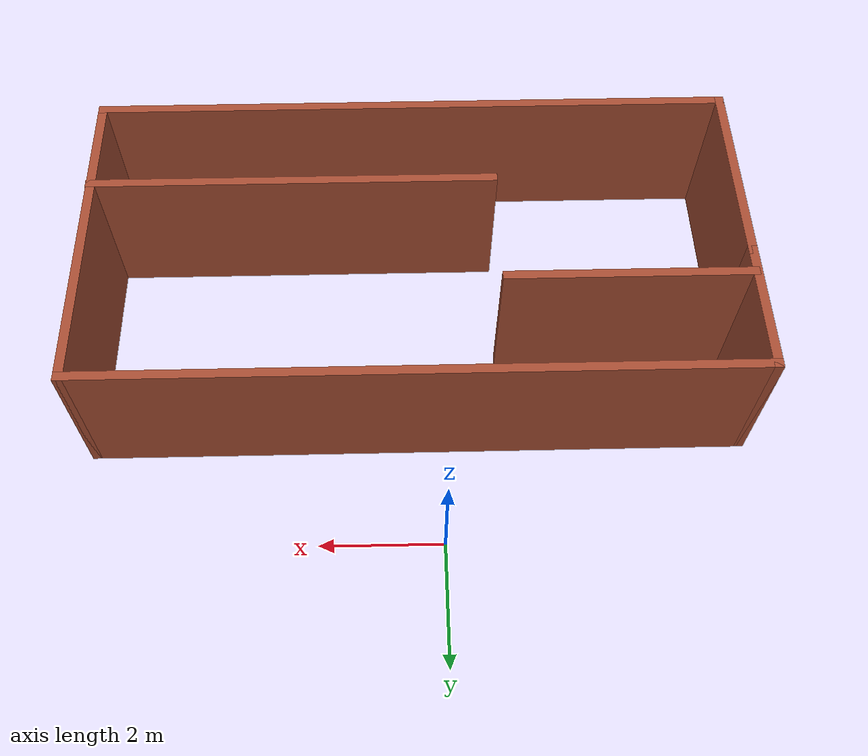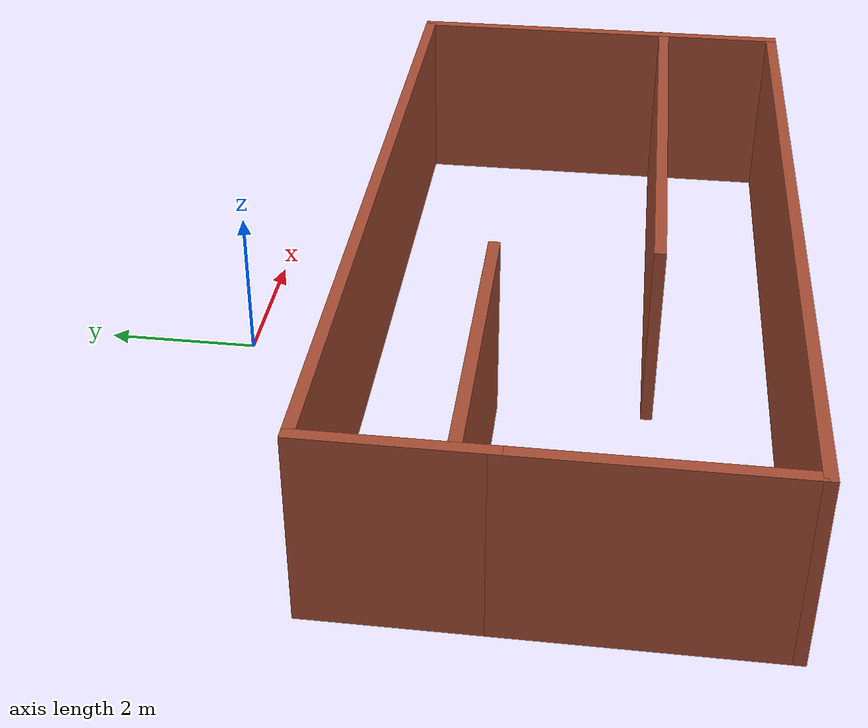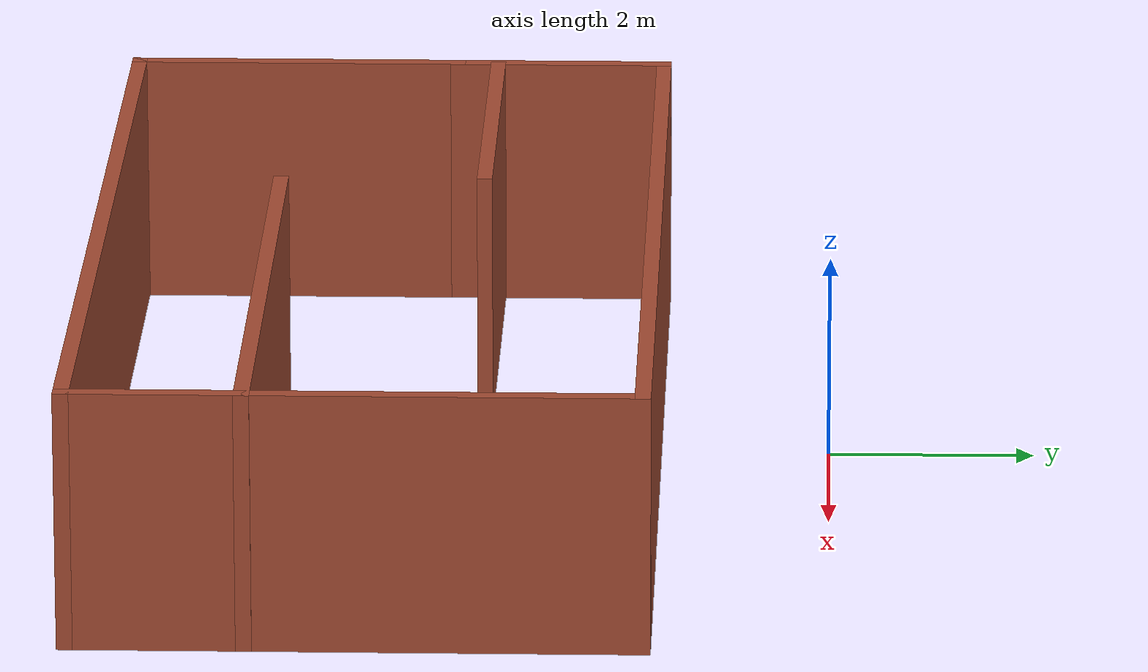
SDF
<?xml version='1.0'?>
<sdf version='1.7'>
  <model name='myword'>
    <pose>0.385 -3.5675 0 0 -0 0</pose>
    <link name='Wall_0'>
      <collision name='Wall_0_Collision'>
        <geometry>
          <box>
            <size>2.25 0.15 2.5</size>
          </box>
        </geometry>
        <pose>0 0 1.25 0 -0 0</pose>
      </collision>
      <visual name='Wall_0_Visual'>
        <pose>0 0 1.25 0 -0 0</pose>
        <geometry>
          <box>
            <size>2.25 0.15 2.5</size>
          </box>
        </geometry>
        <material>
          <script>
            <uri>file://media/materials/scripts/gazebo.material</uri>
            <name>Gazebo/Bricks</name>
          </script>
          <ambient>1 1 1 1</ambient>
        </material>
        <meta>
          <layer>0</layer>
        </meta>
      </visual>
      <pose>-5.305 0.8075 0 0 -0 1.5708</pose>
    </link>
    <link name='Wall_1'>
      <collision name='Wall_1_Collision'>
        <geometry>
          <box>
            <size>10.75 0.15 2.5</size>
          </box>
        </geometry>
        <pose>0 0 1.25 0 -0 0</pose>
      </collision>
      <visual name='Wall_1_Visual'>
        <pose>0 0 1.25 0 -0 0</pose>
        <geometry>
          <box>
            <size>10.75 0.15 2.5</size>
          </box>
        </geometry>
        <material>
          <script>
            <uri>file://media/materials/scripts/gazebo.material</uri>
            <name>Gazebo/Bricks</name>
          </script>
          <ambient>1 1 1 1</ambient>
        </material>
        <meta>
          <layer>0</layer>
        </meta>
      </visual>
      <pose>-0.005 1.8575 0 0 -0 0</pose>
    </link>
    <link name='Wall_2'>
      <collision name='Wall_2_Collision'>
        <geometry>
          <box>
            <size>5.5 0.15 2.5</size>
          </box>
        </geometry>
        <pose>0 0 1.25 0 -0 0</pose>
      </collision>
      <visual name='Wall_2_Visual'>
        <pose>0 0 1.25 0 -0 0</pose>
        <geometry>
          <box>
            <size>5.5 0.15 2.5</size>
          </box>
        </geometry>
        <material>
          <script>
            <uri>file://media/materials/scripts/gazebo.material</uri>
            <name>Gazebo/Bricks</name>
          </script>
          <ambient>1 1 1 1</ambient>
        </material>
        <meta>
          <layer>0</layer>
        </meta>
      </visual>
      <pose>5.295 -0.8175 0 0 -0 -1.5708</pose>
    </link>
    <link name='Wall_3'>
      <collision name='Wall_3_Collision'>
        <geometry>
          <box>
            <size>10.75 0.15 2.5</size>
          </box>
        </geometry>
        <pose>0 0 1.25 0 -0 0</pose>
      </collision>
      <visual name='Wall_3_Visual'>
        <pose>0 0 1.25 0 -0 0</pose>
        <geometry>
          <box>
            <size>10.75 0.15 2.5</size>
          </box>
        </geometry>
        <material>
          <script>
            <uri>file://media/materials/scripts/gazebo.material</uri>
            <name>Gazebo/Bricks</name>
          </script>
          <ambient>1 1 1 1</ambient>
        </material>
        <meta>
          <layer>0</layer>
        </meta>
      </visual>
      <pose>-0.005 -3.4925 0 0 -0 3.14159</pose>
    </link>
    <link name='Wall_4'>
      <collision name='Wall_4_Collision'>
        <geometry>
          <box>
            <size>3.4 0.15 2.5</size>
          </box>
        </geometry>
        <pose>0 0 1.25 0 -0 0</pose>
      </collision>
      <visual name='Wall_4_Visual'>
        <pose>0 0 1.25 0 -0 0</pose>
        <geometry>
          <box>
            <size>3.4 0.15 2.5</size>
          </box>
        </geometry>
        <material>
          <script>
            <uri>file://media/materials/scripts/gazebo.material</uri>
            <name>Gazebo/Bricks</name>
          </script>
          <ambient>1 1 1 1</ambient>
        </material>
        <meta>
          <layer>0</layer>
        </meta>
      </visual>
      <pose>-5.305 -1.8675 0 0 -0 1.5708</pose>
    </link>
    <link name='Wall_6'>
      <collision name='Wall_6_Collision'>
        <geometry>
          <box>
            <size>4 0.15 2.5</size>
          </box>
        </geometry>
        <pose>0 0 1.25 0 -0 0</pose>
      </collision>
      <visual name='Wall_6_Visual'>
        <pose>0 0 1.25 0 -0 0</pose>
        <geometry>
          <box>
            <size>4 0.15 2.5</size>
          </box>
        </geometry>
        <material>
          <script>
            <uri>file://media/materials/scripts/gazebo.material</uri>
            <name>Gazebo/Bricks</name>
          </script>
          <ambient>1 1 1 1</ambient>
        </material>
        <meta>
          <layer>0</layer>
        </meta>
      </visual>
      <pose>-3.34 0.1675 0 0 -0 0</pose>
    </link>
    <link name='Wall_8'>
      <collision name='Wall_8_Collision'>
        <geometry>
          <box>
            <size>6.75 0.15 2.5</size>
          </box>
        </geometry>
        <pose>0 0 1.25 0 -0 0</pose>
      </collision>
      <visual name='Wall_8_Visual'>
        <pose>0 0 1.25 0 -0 0</pose>
        <geometry>
          <box>
            <size>6.75 0.15 2.5</size>
          </box>
        </geometry>
        <material>
          <script>
            <uri>file://media/materials/scripts/gazebo.material</uri>
            <name>Gazebo/Bricks</name>
          </script>
          <ambient>1 1 1 1</ambient>
        </material>
        <meta>
          <layer>0</layer>
        </meta>
      </visual>
      <pose>2.005 -1.8325 0 0 -0 3.14159</pose>
    </link>
    <static>1</static>
  </model>
</sdf>
